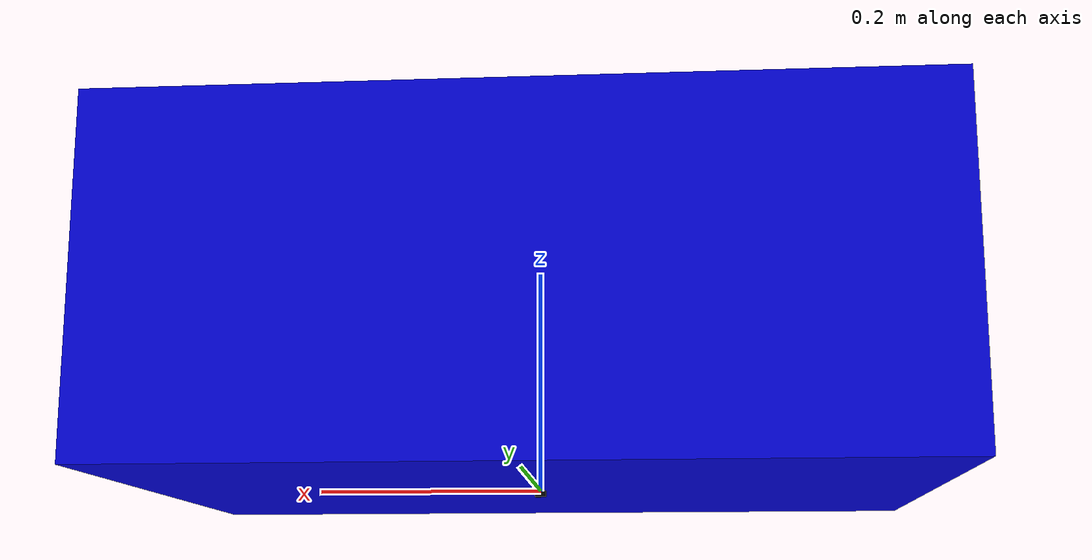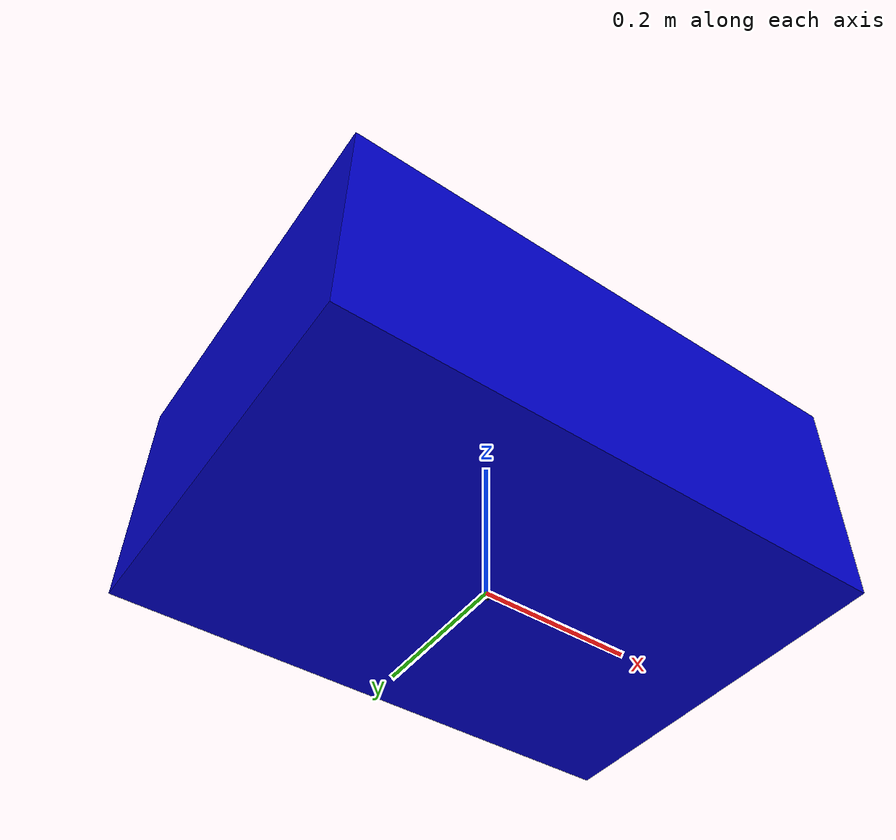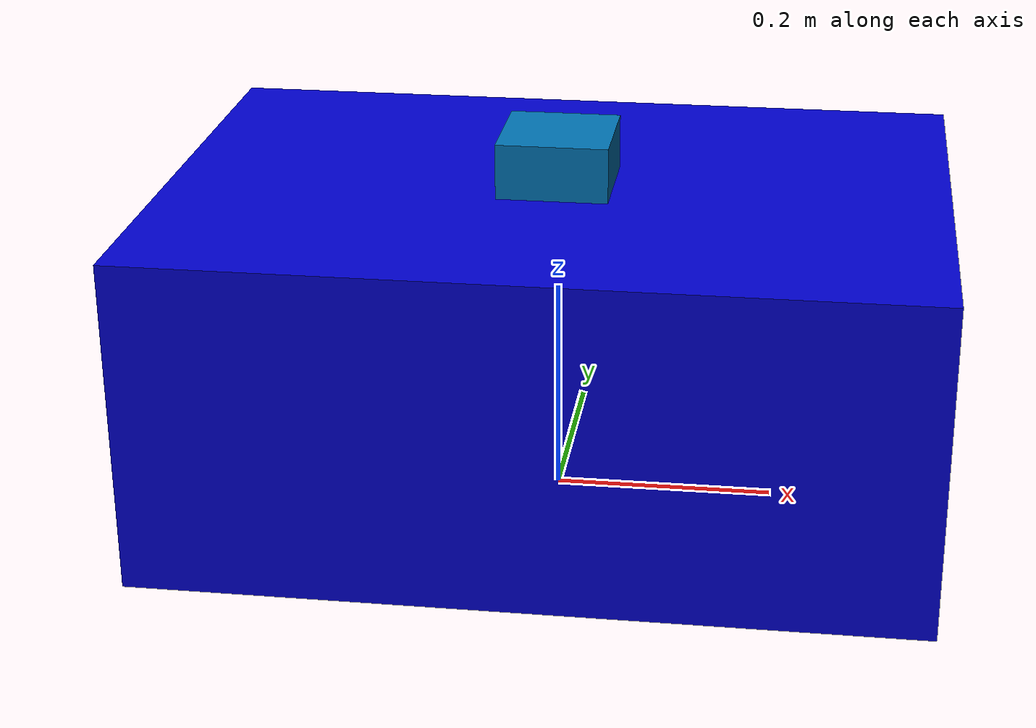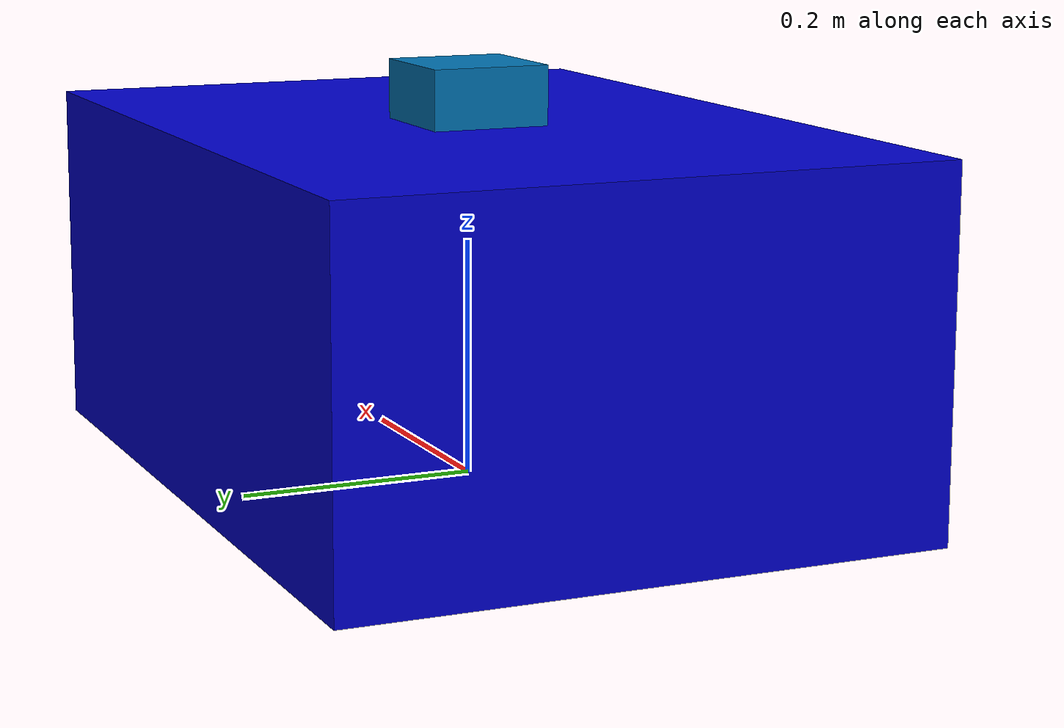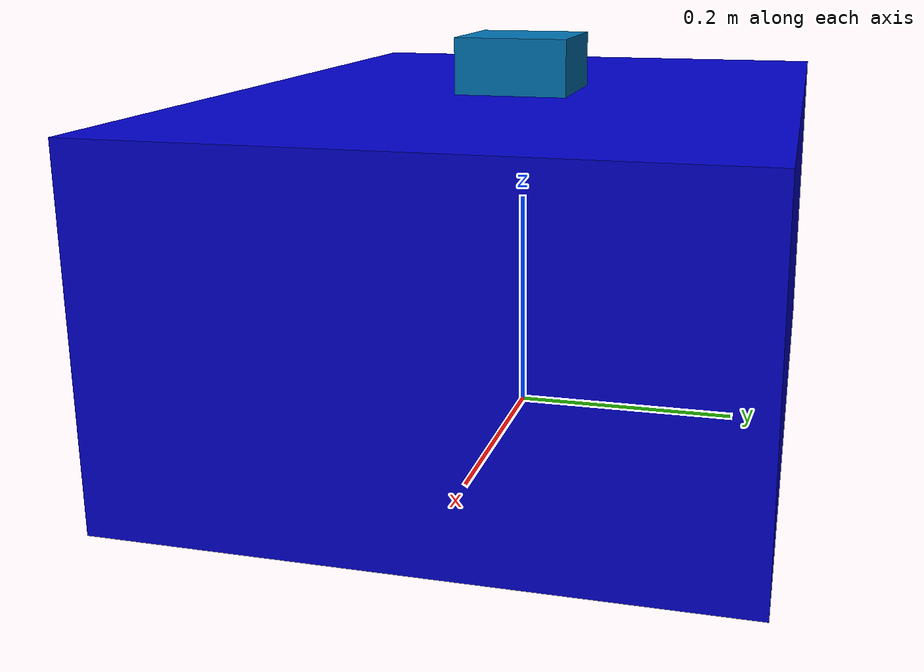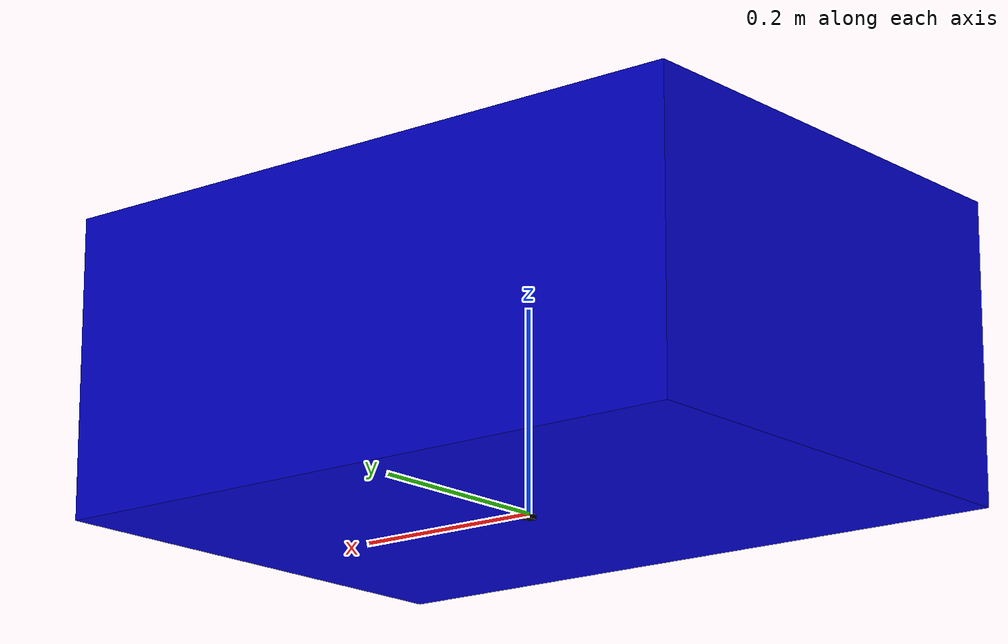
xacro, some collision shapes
<?xml version="1.0"?>
<robot xmlns:xacro="http://www.ros.org/wiki/xacro" name="robot">
  <xacro:include filename="$(find lama_test)/urdf/robot.gazebo" />

  <xacro:macro name="link_dummy" params="name">
    <link name="${name}">
      <visual>
        <geometry>
          <box size="0.010 0.010 0.010" />
        </geometry>
        <material name="black">
          <color rgba="0 0 0 1"/>
        </material>
        <origin xyz="0 0 0" />
      </visual>
      <inertial>
        <mass value="1e-5" />
        <inertia  ixx="1e-5" ixy="0.0" ixz="0.0" iyy="1e-5" iyz="0.0" izz="1e-5" />
      </inertial>
      <collision>
        <geometry>
          <box size="0.010 0.010 0.010" />
        </geometry>
        <origin xyz="0 0 0" />
      </collision>
    </link>
  </xacro:macro>

  <!-- Links -->
  <xacro:link_dummy name="base_link" />
  <xacro:link_dummy name="dummy_x" />
  <xacro:link_dummy name="dummy_y" />

  <link name="robot">
    <visual>
      <geometry>
        <box size="0.7 0.5 0.3" />
      </geometry>
      <material name="blue">
        <color rgba="0 0 .8 1"/>
      </material>
      <origin xyz="0 0 0.150" />
    </visual>
    <inertial>
      <mass value="30" />
      <inertia  ixx="0.5" ixy="0.0" ixz="0.0" iyy="0.5" iyz="0.0" izz="1.0" />
    </inertial>
    <collision>
      <geometry>
        <box size="0.7 0.5 0.3" />
      </geometry>
      <origin xyz="0 0 0.150" />
    </collision>
  </link>

  <link name="hokuyo_link">
    <collision>
      <origin xyz="0 0 0" rpy="0 0 0"/>
      <geometry>
        <box size="0.1 0.1 0.1"/>
      </geometry>
    </collision>
    <visual>
      <origin xyz="0 0 0" rpy="0 0 0"/>
      <geometry>
        <mesh filename="package://rrbot_description/meshes/hokuyo.dae"/>
      </geometry>
    </visual>
    <inertial>
      <mass value="1e-5" />
      <origin xyz="0 0 0" rpy="0 0 0"/>
      <inertia ixx="1e-6" ixy="0" ixz="0" iyy="1e-6" iyz="0" izz="1e-6" />
    </inertial>
  </link>

  <!-- Joints -->
  <joint name="x_joint" type="continuous">
    <axis xyz="1 0 0" />
    <origin xyz="0 0 0" rpy="0 0 0"/>
    <parent link="base_link"/>
    <child link="dummy_x"/>
  </joint>

  <joint name="y_joint" type="continuous">
    <axis xyz="0 1 0" />
    <origin xyz="0 0 0" rpy="0 0 0"/>
    <parent link="dummy_x"/>
    <child link="dummy_y"/>
  </joint>

  <joint name="theta_joint" type="continuous">
    <axis rpy="0 0 1" />
    <origin xyz="0 0 0" rpy="0 0 0"/>
    <parent link="dummy_y"/>
    <child link="robot"/>
  </joint>

  <joint name="hokuyo_joint" type="fixed">
    <axis xyz="0 1 0" />
    <origin xyz="0 0 0.3" rpy="0 0 0"/>
    <parent link="robot"/>
    <child link="hokuyo_link"/>
  </joint>

</robot>
